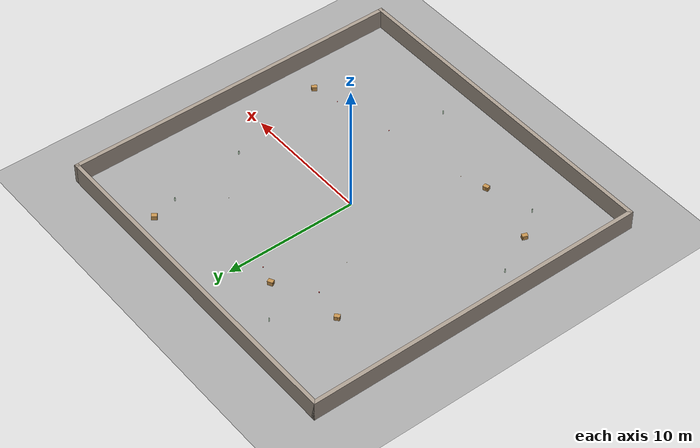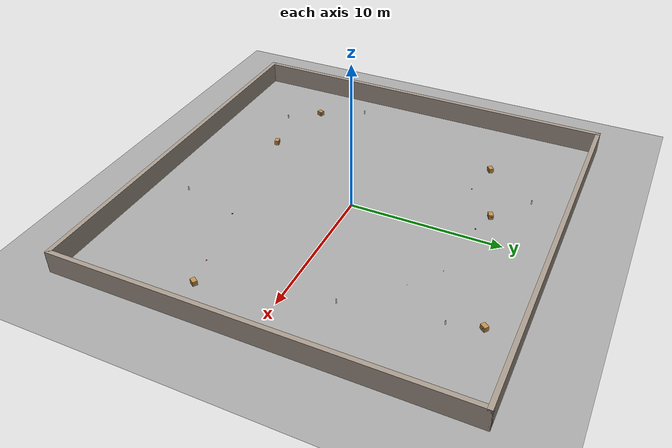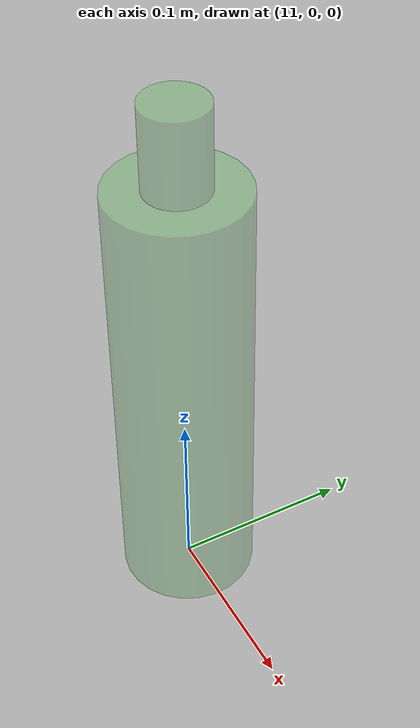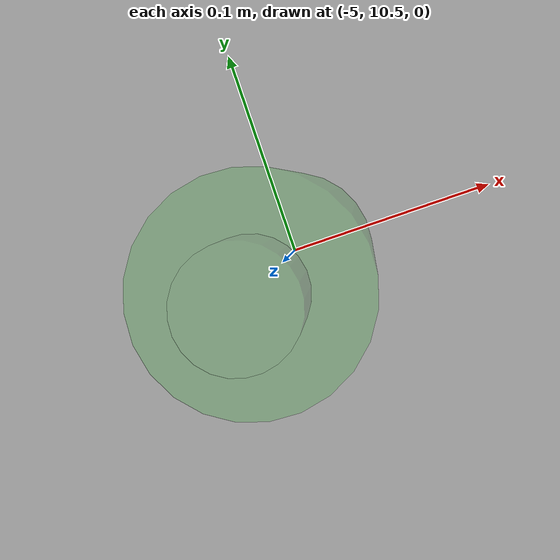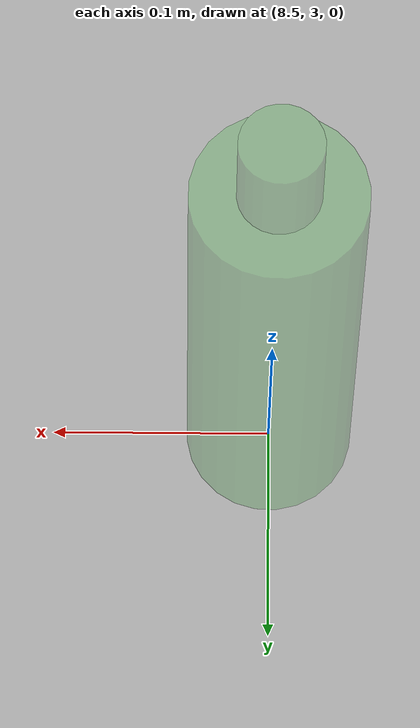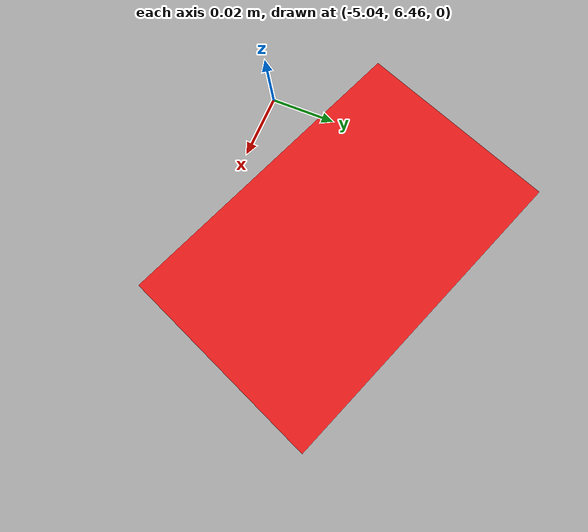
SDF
<sdf version="1.10">
 <world name="trash_world">
  <physics name="1ms" type="ode">
   <max_step_size>0.001</max_step_size>
   <real_time_factor>1.0</real_time_factor>
   <real_time_update_rate>1000</real_time_update_rate>
  </physics>
  <plugin filename="gz-sim-physics-system" name="gz::sim::systems::Physics"/>
  <plugin filename="gz-sim-user-commands-system" name="gz::sim::systems::UserCommands"/>
  <plugin filename="gz-sim-scene-broadcaster-system" name="gz::sim::systems::SceneBroadcaster"/>
  <plugin filename="gz-sim-sensors-system" name="gz::sim::systems::Sensors">
   <render_engine>ogre2</render_engine>
  </plugin>
  <light type="directional" name="sun">
   <pose>0 0 15 0 0 0</pose>
   <diffuse>0.9 0.9 0.9 1</diffuse>
   <specular>0.3 0.3 0.3 1</specular>
   <attenuation>
    <range>1000</range>
    <constant>0.9</constant>
    <linear>0.01</linear>
    <quadratic>0.001</quadratic>
   </attenuation>
   <direction>-0.5 0.1 -0.9</direction>
  </light>
  <light type="point" name="fill_light">
   <pose>0 0 8 0 0 0</pose>
   <diffuse>0.4 0.4 0.5 1</diffuse>
   <specular>0.0 0.0 0.0 1</specular>
   <attenuation>
    <range>30</range>
    <constant>0.5</constant>
    <linear>0.05</linear>
    <quadratic>0.005</quadratic>
   </attenuation>
  </light>
  <model name="ground_plane">
   <static>true</static>
   <link name="link">
    <collision name="collision"><geometry><plane><normal>0 0 1</normal></plane></geometry></collision>
    <visual name="visual">
     <geometry><plane><normal>0 0 1</normal><size>40 40</size></plane></geometry>
     <material>
      <ambient>0.55 0.55 0.55 1</ambient>
      <diffuse>0.65 0.65 0.65 1</diffuse>
      <specular>0.1 0.1 0.1 1</specular>
     </material>
    </visual>
   </link>
  </model>
  <model name="wall_north">
   <static>true</static>
   <pose>0 13 0.75 0 0 0</pose>
   <link name="link">
    <collision name="col"><geometry><box><size>26.3 0.3 1.5</size></box></geometry></collision>
    <visual name="vis">
     <geometry><box><size>26.3 0.3 1.5</size></box></geometry>
     <material><ambient>0.55 0.5 0.45 1</ambient><diffuse>0.65 0.6 0.55 1</diffuse></material>
    </visual>
   </link>
  </model>
  <model name="wall_south">
   <static>true</static>
   <pose>0 -13 0.75 0 0 0</pose>
   <link name="link">
    <collision name="col"><geometry><box><size>26.3 0.3 1.5</size></box></geometry></collision>
    <visual name="vis">
     <geometry><box><size>26.3 0.3 1.5</size></box></geometry>
     <material><ambient>0.55 0.5 0.45 1</ambient><diffuse>0.65 0.6 0.55 1</diffuse></material>
    </visual>
   </link>
  </model>
  <model name="wall_east">
   <static>true</static>
   <pose>13 0 0.75 0 0 0</pose>
   <link name="link">
    <collision name="col"><geometry><box><size>0.3 26.3 1.5</size></box></geometry></collision>
    <visual name="vis">
     <geometry><box><size>0.3 26.3 1.5</size></box></geometry>
     <material><ambient>0.55 0.5 0.45 1</ambient><diffuse>0.65 0.6 0.55 1</diffuse></material>
    </visual>
   </link>
  </model>
  <model name="wall_west">
   <static>true</static>
   <pose>-13 0 0.75 0 0 0</pose>
   <link name="link">
    <collision name="col"><geometry><box><size>0.3 26.3 1.5</size></box></geometry></collision>
    <visual name="vis">
     <geometry><box><size>0.3 26.3 1.5</size></box></geometry>
     <material><ambient>0.55 0.5 0.45 1</ambient><diffuse>0.65 0.6 0.55 1</diffuse></material>
    </visual>
   </link>
  </model>
  <model name="glass_bottle_1">
   <static>true</static>
   <pose>-5.0 10.5 0 0 0 0.6</pose>
   <link name="link">
    <visual name="body">
     <pose>0 0 0.13 0 0 0</pose>
     <geometry><cylinder><radius>0.038</radius><length>0.26</length></cylinder></geometry>
     <material>
      <ambient>0.15 0.55 0.15 0.28</ambient>
      <diffuse>0.20 0.70 0.20 0.28</diffuse>
      <specular>0.9 0.9 0.9 1.0</specular>
     </material>
    </visual>
    <visual name="neck">
     <pose>0 0 0.278 0 0 0</pose>
     <geometry><cylinder><radius>0.018</radius><length>0.06</length></cylinder></geometry>
     <material>
      <ambient>0.15 0.55 0.15 0.28</ambient>
      <diffuse>0.20 0.70 0.20 0.28</diffuse>
      <specular>0.9 0.9 0.9 1.0</specular>
     </material>
    </visual>
    <collision name="c">
     <pose>0 0 0.15 0 0 0</pose>
     <geometry><cylinder><radius>0.038</radius><length>0.31</length></cylinder></geometry>
    </collision>
   </link>
  </model>
  <model name="glass_bottle_2">
   <static>true</static>
   <pose>7.5  9.0 0 0 0 1.3</pose>
   <link name="link">
    <visual name="body">
     <pose>0 0 0.13 0 0 0</pose>
     <geometry><cylinder><radius>0.038</radius><length>0.26</length></cylinder></geometry>
     <material>
      <ambient>0.15 0.55 0.15 0.28</ambient>
      <diffuse>0.20 0.70 0.20 0.28</diffuse>
      <specular>0.9 0.9 0.9 1.0</specular>
     </material>
    </visual>
    <visual name="neck">
     <pose>0 0 0.278 0 0 0</pose>
     <geometry><cylinder><radius>0.018</radius><length>0.06</length></cylinder></geometry>
     <material>
      <ambient>0.15 0.55 0.15 0.28</ambient>
      <diffuse>0.20 0.70 0.20 0.28</diffuse>
      <specular>0.9 0.9 0.9 1.0</specular>
     </material>
    </visual>
    <collision name="c">
     <pose>0 0 0.15 0 0 0</pose>
     <geometry><cylinder><radius>0.038</radius><length>0.31</length></cylinder></geometry>
    </collision>
   </link>
  </model>
  <model name="glass_bottle_3">
   <static>true</static>
   <pose>11.0  0.0 0 0 0 0.2</pose>
   <link name="link">
    <visual name="body">
     <pose>0 0 0.13 0 0 0</pose>
     <geometry><cylinder><radius>0.038</radius><length>0.26</length></cylinder></geometry>
     <material>
      <ambient>0.15 0.55 0.15 0.28</ambient>
      <diffuse>0.20 0.70 0.20 0.28</diffuse>
      <specular>0.9 0.9 0.9 1.0</specular>
     </material>
    </visual>
    <visual name="neck">
     <pose>0 0 0.278 0 0 0</pose>
     <geometry><cylinder><radius>0.018</radius><length>0.06</length></cylinder></geometry>
     <material>
      <ambient>0.15 0.55 0.15 0.28</ambient>
      <diffuse>0.20 0.70 0.20 0.28</diffuse>
      <specular>0.9 0.9 0.9 1.0</specular>
     </material>
    </visual>
    <collision name="c">
     <pose>0 0 0.15 0 0 0</pose>
     <geometry><cylinder><radius>0.038</radius><length>0.31</length></cylinder></geometry>
    </collision>
   </link>
  </model>
  <model name="glass_bottle_4">
   <static>true</static>
   <pose>3.0 -10.5 0 0 0 2.5</pose>
   <link name="link">
    <visual name="body">
     <pose>0 0 0.13 0 0 0</pose>
     <geometry><cylinder><radius>0.038</radius><length>0.26</length></cylinder></geometry>
     <material>
      <ambient>0.15 0.55 0.15 0.28</ambient>
      <diffuse>0.20 0.70 0.20 0.28</diffuse>
      <specular>0.9 0.9 0.9 1.0</specular>
     </material>
    </visual>
    <visual name="neck">
     <pose>0 0 0.278 0 0 0</pose>
     <geometry><cylinder><radius>0.018</radius><length>0.06</length></cylinder></geometry>
     <material>
      <ambient>0.15 0.55 0.15 0.28</ambient>
      <diffuse>0.20 0.70 0.20 0.28</diffuse>
      <specular>0.9 0.9 0.9 1.0</specular>
     </material>
    </visual>
    <collision name="c">
     <pose>0 0 0.15 0 0 0</pose>
     <geometry><cylinder><radius>0.038</radius><length>0.31</length></cylinder></geometry>
    </collision>
   </link>
  </model>
  <model name="glass_bottle_5">
   <static>true</static>
   <pose>-8.0 -9.0 0 0 0 0.8</pose>
   <link name="link">
    <visual name="body">
     <pose>0 0 0.13 0 0 0</pose>
     <geometry><cylinder><radius>0.038</radius><length>0.26</length></cylinder></geometry>
     <material>
      <ambient>0.15 0.55 0.15 0.28</ambient>
      <diffuse>0.20 0.70 0.20 0.28</diffuse>
      <specular>0.9 0.9 0.9 1.0</specular>
     </material>
    </visual>
    <visual name="neck">
     <pose>0 0 0.278 0 0 0</pose>
     <geometry><cylinder><radius>0.018</radius><length>0.06</length></cylinder></geometry>
     <material>
      <ambient>0.15 0.55 0.15 0.28</ambient>
      <diffuse>0.20 0.70 0.20 0.28</diffuse>
      <specular>0.9 0.9 0.9 1.0</specular>
     </material>
    </visual>
    <collision name="c">
     <pose>0 0 0.15 0 0 0</pose>
     <geometry><cylinder><radius>0.038</radius><length>0.31</length></cylinder></geometry>
    </collision>
   </link>
  </model>
  <model name="glass_bottle_6">
   <static>true</static>
   <pose>-11.0 -4.0 0 0 0 1.5</pose>
   <link name="link">
    <visual name="body">
     <pose>0 0 0.13 0 0 0</pose>
     <geometry><cylinder><radius>0.038</radius><length>0.26</length></cylinder></geometry>
     <material>
      <ambient>0.15 0.55 0.15 0.28</ambient>
      <diffuse>0.20 0.70 0.20 0.28</diffuse>
      <specular>0.9 0.9 0.9 1.0</specular>
     </material>
    </visual>
    <visual name="neck">
     <pose>0 0 0.278 0 0 0</pose>
     <geometry><cylinder><radius>0.018</radius><length>0.06</length></cylinder></geometry>
     <material>
      <ambient>0.15 0.55 0.15 0.28</ambient>
      <diffuse>0.20 0.70 0.20 0.28</diffuse>
      <specular>0.9 0.9 0.9 1.0</specular>
     </material>
    </visual>
    <collision name="c">
     <pose>0 0 0.15 0 0 0</pose>
     <geometry><cylinder><radius>0.038</radius><length>0.31</length></cylinder></geometry>
    </collision>
   </link>
  </model>
  <model name="glass_bottle_7">
   <static>true</static>
   <pose>8.5  3.0 0 0 0 0.1</pose>
   <link name="link">
    <visual name="body">
     <pose>0 0 0.13 0 0 0</pose>
     <geometry><cylinder><radius>0.038</radius><length>0.26</length></cylinder></geometry>
     <material>
      <ambient>0.15 0.55 0.15 0.28</ambient>
      <diffuse>0.20 0.70 0.20 0.28</diffuse>
      <specular>0.9 0.9 0.9 1.0</specular>
     </material>
    </visual>
    <visual name="neck">
     <pose>0 0 0.278 0 0 0</pose>
     <geometry><cylinder><radius>0.018</radius><length>0.06</length></cylinder></geometry>
     <material>
      <ambient>0.15 0.55 0.15 0.28</ambient>
      <diffuse>0.20 0.70 0.20 0.28</diffuse>
      <specular>0.9 0.9 0.9 1.0</specular>
     </material>
    </visual>
    <collision name="c">
     <pose>0 0 0.15 0 0 0</pose>
     <geometry><cylinder><radius>0.038</radius><length>0.31</length></cylinder></geometry>
    </collision>
   </link>
  </model>
  <model name="cardboard_box_1">
   <static>true</static>
   <pose>-2.5  8.5 0.16 0 0 0.5</pose>
   <link name="link">
    <visual name="body">
     <geometry><box><size>0.40 0.30 0.32</size></box></geometry>
     <material>
      <ambient>0.68 0.50 0.26 1</ambient>
      <diffuse>0.75 0.56 0.30 1</diffuse>
      <specular>0.04 0.03 0.01 1</specular>
     </material>
    </visual>
    <visual name="seam_h">
     <pose>0 0 0.02 0 0 0</pose>
     <geometry><box><size>0.401 0.301 0.005</size></box></geometry>
     <material><ambient>0.55 0.40 0.20 1</ambient><diffuse>0.60 0.44 0.22 1</diffuse></material>
    </visual>
    <collision name="c"><geometry><box><size>0.40 0.30 0.32</size></box></geometry></collision>
   </link>
  </model>
  <model name="cardboard_box_2">
   <static>true</static>
   <pose>10.5 -5.0 0.16 0 0 1.0</pose>
   <link name="link">
    <visual name="body">
     <geometry><box><size>0.40 0.30 0.32</size></box></geometry>
     <material>
      <ambient>0.68 0.50 0.26 1</ambient>
      <diffuse>0.75 0.56 0.30 1</diffuse>
      <specular>0.04 0.03 0.01 1</specular>
     </material>
    </visual>
    <visual name="seam_h">
     <pose>0 0 0.02 0 0 0</pose>
     <geometry><box><size>0.401 0.301 0.005</size></box></geometry>
     <material><ambient>0.55 0.40 0.20 1</ambient><diffuse>0.60 0.44 0.22 1</diffuse></material>
    </visual>
    <collision name="c"><geometry><box><size>0.40 0.30 0.32</size></box></geometry></collision>
   </link>
  </model>
  <model name="cardboard_box_3">
   <static>true</static>
   <pose>-7.5  7.0 0.16 0 0 0.7</pose>
   <link name="link">
    <visual name="body">
     <geometry><box><size>0.40 0.30 0.32</size></box></geometry>
     <material>
      <ambient>0.68 0.50 0.26 1</ambient>
      <diffuse>0.75 0.56 0.30 1</diffuse>
      <specular>0.04 0.03 0.01 1</specular>
     </material>
    </visual>
    <visual name="seam_h">
     <pose>0 0 0.02 0 0 0</pose>
     <geometry><box><size>0.401 0.301 0.005</size></box></geometry>
     <material><ambient>0.55 0.40 0.20 1</ambient><diffuse>0.60 0.44 0.22 1</diffuse></material>
    </visual>
    <collision name="c"><geometry><box><size>0.40 0.30 0.32</size></box></geometry></collision>
   </link>
  </model>
  <model name="cardboard_box_4">
   <static>true</static>
   <pose>-9.5 -7.0 0.16 0 0 1.2</pose>
   <link name="link">
    <visual name="body">
     <geometry><box><size>0.40 0.30 0.32</size></box></geometry>
     <material>
      <ambient>0.68 0.50 0.26 1</ambient>
      <diffuse>0.75 0.56 0.30 1</diffuse>
      <specular>0.04 0.03 0.01 1</specular>
     </material>
    </visual>
    <visual name="seam_h">
     <pose>0 0 0.02 0 0 0</pose>
     <geometry><box><size>0.401 0.301 0.005</size></box></geometry>
     <material><ambient>0.55 0.40 0.20 1</ambient><diffuse>0.60 0.44 0.22 1</diffuse></material>
    </visual>
    <collision name="c"><geometry><box><size>0.40 0.30 0.32</size></box></geometry></collision>
   </link>
  </model>
  <model name="cardboard_box_5">
   <static>true</static>
   <pose>-4.5 -8.0 0.16 0 0 0.3</pose>
   <link name="link">
    <visual name="body">
     <geometry><box><size>0.40 0.30 0.32</size></box></geometry>
     <material>
      <ambient>0.68 0.50 0.26 1</ambient>
      <diffuse>0.75 0.56 0.30 1</diffuse>
      <specular>0.04 0.03 0.01 1</specular>
     </material>
    </visual>
    <visual name="seam_h">
     <pose>0 0 0.02 0 0 0</pose>
     <geometry><box><size>0.401 0.301 0.005</size></box></geometry>
     <material><ambient>0.55 0.40 0.20 1</ambient><diffuse>0.60 0.44 0.22 1</diffuse></material>
    </visual>
    <collision name="c"><geometry><box><size>0.40 0.30 0.32</size></box></geometry></collision>
   </link>
  </model>
  <model name="cardboard_box_6">
   <static>true</static>
   <pose>7.0  11.0 0.16 0 0 0.9</pose>
   <link name="link">
    <visual name="body">
     <geometry><box><size>0.40 0.30 0.32</size></box></geometry>
     <material>
      <ambient>0.68 0.50 0.26 1</ambient>
      <diffuse>0.75 0.56 0.30 1</diffuse>
      <specular>0.04 0.03 0.01 1</specular>
     </material>
    </visual>
    <visual name="seam_h">
     <pose>0 0 0.02 0 0 0</pose>
     <geometry><box><size>0.401 0.301 0.005</size></box></geometry>
     <material><ambient>0.55 0.40 0.20 1</ambient><diffuse>0.60 0.44 0.22 1</diffuse></material>
    </visual>
    <collision name="c"><geometry><box><size>0.40 0.30 0.32</size></box></geometry></collision>
   </link>
  </model>
  <model name="cig_butt_1">
   <static>true</static>
   <pose>3.5  7.5 0.005 1.5707963 0 0.8</pose>
   <link name="link">
    <visual name="body">
     <geometry><cylinder><radius>0.005</radius><length>0.055</length></cylinder></geometry>
     <material><ambient>0.72 0.64 0.38 1</ambient><diffuse>0.80 0.72 0.42 1</diffuse></material>
    </visual>
    <visual name="filter">
     <pose>0.030 0 0 0 0 0</pose>
     <geometry><cylinder><radius>0.005</radius><length>0.012</length></cylinder></geometry>
     <material><ambient>0.90 0.45 0.10 1</ambient><diffuse>1.00 0.55 0.15 1</diffuse></material>
    </visual>
    <collision name="c">
     <geometry><cylinder><radius>0.005</radius><length>0.065</length></cylinder></geometry>
    </collision>
   </link>
  </model>
  <model name="cig_butt_2">
   <static>true</static>
   <pose>-4.0  3.5 0.005 1.5707963 0 2.1</pose>
   <link name="link">
    <visual name="body">
     <geometry><cylinder><radius>0.005</radius><length>0.055</length></cylinder></geometry>
     <material><ambient>0.72 0.64 0.38 1</ambient><diffuse>0.80 0.72 0.42 1</diffuse></material>
    </visual>
    <visual name="filter">
     <pose>0.030 0 0 0 0 0</pose>
     <geometry><cylinder><radius>0.005</radius><length>0.012</length></cylinder></geometry>
     <material><ambient>0.90 0.45 0.10 1</ambient><diffuse>1.00 0.55 0.15 1</diffuse></material>
    </visual>
    <collision name="c">
     <geometry><cylinder><radius>0.005</radius><length>0.065</length></cylinder></geometry>
    </collision>
   </link>
  </model>
  <model name="cig_butt_3">
   <static>true</static>
   <pose>7.0 -2.5 0.005 1.5707963 0 0.3</pose>
   <link name="link">
    <visual name="body">
     <geometry><cylinder><radius>0.005</radius><length>0.055</length></cylinder></geometry>
     <material><ambient>0.72 0.64 0.38 1</ambient><diffuse>0.80 0.72 0.42 1</diffuse></material>
    </visual>
    <visual name="filter">
     <pose>0.030 0 0 0 0 0</pose>
     <geometry><cylinder><radius>0.005</radius><length>0.012</length></cylinder></geometry>
     <material><ambient>0.90 0.45 0.10 1</ambient><diffuse>1.00 0.55 0.15 1</diffuse></material>
    </visual>
    <collision name="c">
     <geometry><cylinder><radius>0.005</radius><length>0.065</length></cylinder></geometry>
    </collision>
   </link>
  </model>
  <model name="cig_butt_4">
   <static>true</static>
   <pose>-2.5 -7.5 0.005 1.5707963 0 1.7</pose>
   <link name="link">
    <visual name="body">
     <geometry><cylinder><radius>0.005</radius><length>0.055</length></cylinder></geometry>
     <material><ambient>0.72 0.64 0.38 1</ambient><diffuse>0.80 0.72 0.42 1</diffuse></material>
    </visual>
    <visual name="filter">
     <pose>0.030 0 0 0 0 0</pose>
     <geometry><cylinder><radius>0.005</radius><length>0.012</length></cylinder></geometry>
     <material><ambient>0.90 0.45 0.10 1</ambient><diffuse>1.00 0.55 0.15 1</diffuse></material>
    </visual>
    <collision name="c">
     <geometry><cylinder><radius>0.005</radius><length>0.065</length></cylinder></geometry>
    </collision>
   </link>
  </model>
  <model name="cig_butt_5">
   <static>true</static>
   <pose>5.5  6.0 0.005 1.5707963 0 2.8</pose>
   <link name="link">
    <visual name="body">
     <geometry><cylinder><radius>0.005</radius><length>0.055</length></cylinder></geometry>
     <material><ambient>0.72 0.64 0.38 1</ambient><diffuse>0.80 0.72 0.42 1</diffuse></material>
    </visual>
    <visual name="filter">
     <pose>0.030 0 0 0 0 0</pose>
     <geometry><cylinder><radius>0.005</radius><length>0.012</length></cylinder></geometry>
     <material><ambient>0.90 0.45 0.10 1</ambient><diffuse>1.00 0.55 0.15 1</diffuse></material>
    </visual>
    <collision name="c">
     <geometry><cylinder><radius>0.005</radius><length>0.065</length></cylinder></geometry>
    </collision>
   </link>
  </model>
  <model name="cig_butt_6">
   <static>true</static>
   <pose>-8.0 -4.5 0.005 1.5707963 0 0.6</pose>
   <link name="link">
    <visual name="body">
     <geometry><cylinder><radius>0.005</radius><length>0.055</length></cylinder></geometry>
     <material><ambient>0.72 0.64 0.38 1</ambient><diffuse>0.80 0.72 0.42 1</diffuse></material>
    </visual>
    <visual name="filter">
     <pose>0.030 0 0 0 0 0</pose>
     <geometry><cylinder><radius>0.005</radius><length>0.012</length></cylinder></geometry>
     <material><ambient>0.90 0.45 0.10 1</ambient><diffuse>1.00 0.55 0.15 1</diffuse></material>
    </visual>
    <collision name="c">
     <geometry><cylinder><radius>0.005</radius><length>0.065</length></cylinder></geometry>
    </collision>
   </link>
  </model>
  <model name="cig_pack_1">
   <static>true</static>
   <pose>4.0 -6.5 0.011 0 0 0.4</pose>
   <link name="link">
    <visual name="body">
     <geometry><box><size>0.055 0.085 0.022</size></box></geometry>
     <material>
      <ambient>0.80 0.08 0.08 1</ambient>
      <diffuse>0.90 0.10 0.10 1</diffuse>
      <specular>0.3 0.3 0.3 1</specular>
     </material>
    </visual>
    <visual name="top_stripe">
     <pose>0 0 0.008 0 0 0</pose>
     <geometry><box><size>0.055 0.085 0.006</size></box></geometry>
     <material><ambient>0.95 0.95 0.95 1</ambient><diffuse>1.0 1.0 1.0 1</diffuse></material>
    </visual>
    <collision name="c"><geometry><box><size>0.055 0.085 0.022</size></box></geometry></collision>
   </link>
  </model>
  <model name="cig_pack_2">
   <static>true</static>
   <pose>-5.0  6.5 0.011 0 0 1.2</pose>
   <link name="link">
    <visual name="body">
     <geometry><box><size>0.055 0.085 0.022</size></box></geometry>
     <material>
      <ambient>0.80 0.08 0.08 1</ambient>
      <diffuse>0.90 0.10 0.10 1</diffuse>
      <specular>0.3 0.3 0.3 1</specular>
     </material>
    </visual>
    <visual name="top_stripe">
     <pose>0 0 0.008 0 0 0</pose>
     <geometry><box><size>0.055 0.085 0.006</size></box></geometry>
     <material><ambient>0.95 0.95 0.95 1</ambient><diffuse>1.0 1.0 1.0 1</diffuse></material>
    </visual>
    <collision name="c"><geometry><box><size>0.055 0.085 0.022</size></box></geometry></collision>
   </link>
  </model>
  <model name="cig_pack_3">
   <static>true</static>
   <pose>-1.0  8.0 0.011 0 0 2.5</pose>
   <link name="link">
    <visual name="body">
     <geometry><box><size>0.055 0.085 0.022</size></box></geometry>
     <material>
      <ambient>0.80 0.08 0.08 1</ambient>
      <diffuse>0.90 0.10 0.10 1</diffuse>
      <specular>0.3 0.3 0.3 1</specular>
     </material>
    </visual>
    <visual name="top_stripe">
     <pose>0 0 0.008 0 0 0</pose>
     <geometry><box><size>0.055 0.085 0.006</size></box></geometry>
     <material><ambient>0.95 0.95 0.95 1</ambient><diffuse>1.0 1.0 1.0 1</diffuse></material>
    </visual>
    <collision name="c"><geometry><box><size>0.055 0.085 0.022</size></box></geometry></collision>
   </link>
  </model>
  <model name="cig_pack_4">
   <static>true</static>
   <pose>8.5 -5.5 0.011 0 0 0.8</pose>
   <link name="link">
    <visual name="body">
     <geometry><box><size>0.055 0.085 0.022</size></box></geometry>
     <material>
      <ambient>0.80 0.08 0.08 1</ambient>
      <diffuse>0.90 0.10 0.10 1</diffuse>
      <specular>0.3 0.3 0.3 1</specular>
     </material>
    </visual>
    <visual name="top_stripe">
     <pose>0 0 0.008 0 0 0</pose>
     <geometry><box><size>0.055 0.085 0.006</size></box></geometry>
     <material><ambient>0.95 0.95 0.95 1</ambient><diffuse>1.0 1.0 1.0 1</diffuse></material>
    </visual>
    <collision name="c"><geometry><box><size>0.055 0.085 0.022</size></box></geometry></collision>
   </link>
  </model>
 </world>
</sdf>
